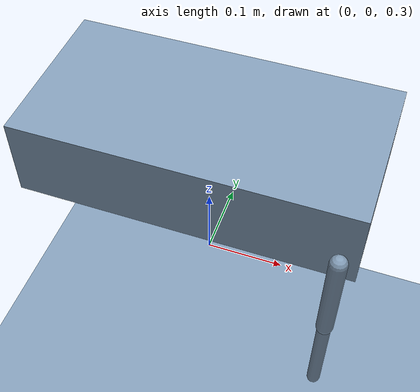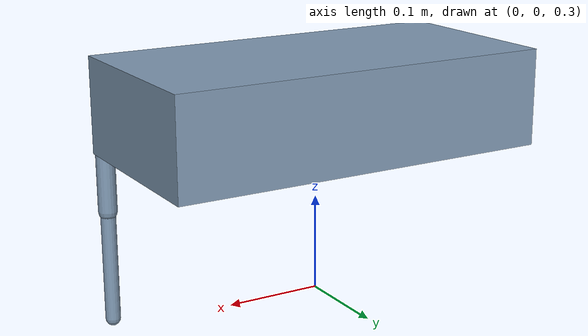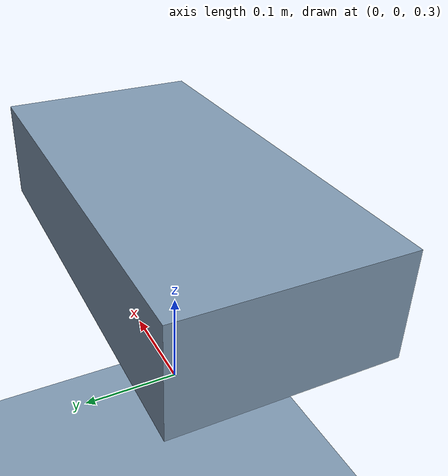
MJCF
<!-- Simplified model file for debugging -->
<mujoco model="yobotics_simple">
    <compiler
        angle="degree"
        inertiafromgeom="true"
        coordinate="local"
        meshdir="../meshes/"
    />

    <option
        timestep="0.001"
        iterations="50"
        solver="Newton"
        tolerance="1e-10"
    />

    <size nstack="5000"/>

    <default>
        <joint limited="true" damping="0.1" armature="0.01"/>
        <motor ctrllimited="true" ctrlrange="-33.5 33.5"/>
        <geom contype="1" conaffinity="1" friction="1.0 0.1 0.1" rgba="0.5 0.6 0.7 1"/>
    </default>

    <worldbody>
        <light diffuse=".5 .5 .5" pos="0 0 3" dir="0 0 -1"/>
        <geom name="ground" type="plane" size="20 20 0.1" pos="0 0 0"/>

        <body name="trunk" pos="0 0 0.5">
            <joint type="free" limited="false"/>
            <geom type="box" size="0.2 0.1 0.05"/>

            <!-- Front right leg -->
            <body name="fr_hip" pos="0.18 -0.07 0">
                <joint name="fr_hip_joint" type="hinge" axis="0 0 1" range="-0.7 0.7"/>
                <geom type="cylinder" size="0.02 0.02" pos="0 0 0"/>

                <body name="fr_thigh" pos="0 -0.05 0">
                    <joint name="fr_thigh_joint" type="hinge" axis="1 0 0" range="-1.6 1.6"/>
                    <geom type="capsule" size="0.01" fromto="0 0 0 0 0 -0.12"/>

                    <body name="fr_calf" pos="0 0 -0.12">
                        <joint name="fr_calf_joint" type="hinge" axis="1 0 0" range="-2.4 -0.4"/>
                        <geom type="capsule" size="0.008" fromto="0 0 0 0 0 -0.12"/>
                    </body>
                </body>
            </body>
        </body>
    </worldbody>
</mujoco>
